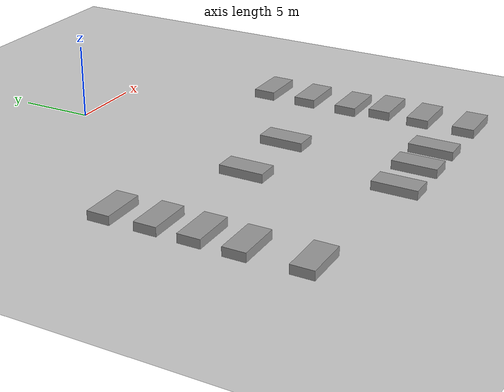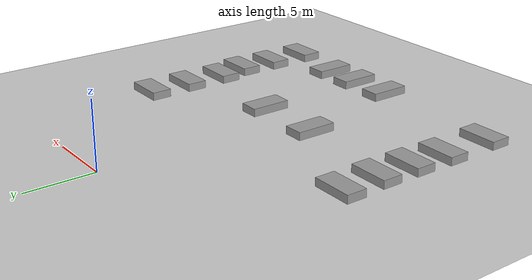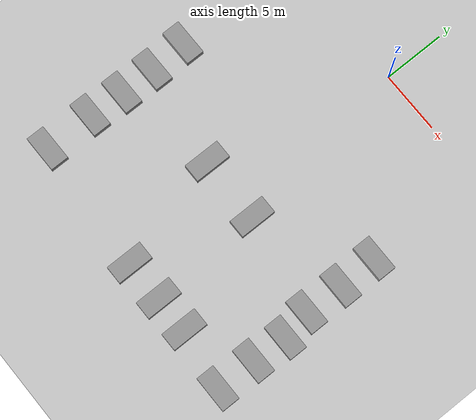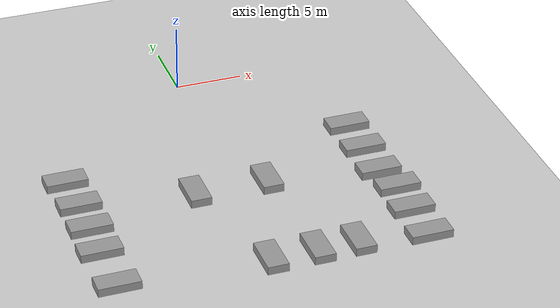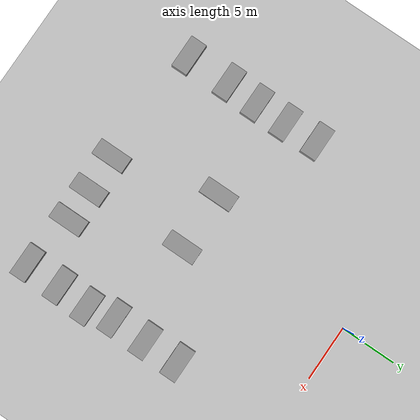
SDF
<sdf version="1.7">
 <world name="default">
  <model name="ground_plane">
   <static>1</static>
   <link name="link">
    <collision name="collision">
     <geometry><plane><normal>0 0 1</normal><size>100 100</size></plane></geometry>
     <surface><friction><ode><mu>100</mu><mu2>50</mu2></ode></friction></surface>
    </collision>
    <visual name="visual">
     <cast_shadows>0</cast_shadows>
     <geometry><plane><normal>0 0 1</normal><size>100 100</size></plane></geometry>
     <material>
      <script><uri>file://media/materials/scripts/gazebo.material</uri><name>Gazebo/Grey</name></script>
     </material>
    </visual>
   </link>
  </model>
  <model name="bed_2">
   <link name="link_2">
    <inertial>
     <mass>1</mass>
     <inertia>
      <ixx>0.166667</ixx>
      <ixy>0</ixy>
      <ixz>0</ixz>
      <iyy>0.166667</iyy>
      <iyz>0</iyz>
      <izz>0.166667</izz>
     </inertia>
    </inertial>
    <pose>-1.5718 2.2064 -0 0 -0 0</pose>
    <visual name="visual">
     <geometry><box><size>3 1.5 0.6</size></box></geometry>
     <material>
      <lighting>1</lighting>
      <script><uri>file://media/materials/scripts/gazebo.material</uri><name>Gazebo/Grey</name></script>
      <shader type="pixel"><normal_map>__default__</normal_map></shader>
      <ambient>0.3 0.3 0.3 1</ambient>
      <diffuse>0.7 0.7 0.7 1</diffuse>
      <specular>0.01 0.01 0.01 1</specular>
      <emissive>0 0 0 1</emissive>
     </material>
    </visual>
    <collision name="collision">
     <geometry><box><size>1 1 1</size></box></geometry>
     <surface>
      <friction>
       <ode><mu>1</mu><mu2>1</mu2><fdir1>0 0 0</fdir1><slip1>0</slip1><slip2>0</slip2></ode>
       <torsional>
        <coefficient>1</coefficient>
        <patch_radius>0</patch_radius>
        <surface_radius>0</surface_radius>
        <use_patch_radius>1</use_patch_radius>
        <ode><slip>0</slip></ode>
       </torsional>
      </friction>
      <bounce><restitution_coefficient>0</restitution_coefficient><threshold>1e+06</threshold></bounce>
      <contact>
       <collide_without_contact>0</collide_without_contact>
       <collide_without_contact_bitmask>1</collide_without_contact_bitmask>
       <collide_bitmask>1</collide_bitmask>
       <ode>
        <soft_cfm>0</soft_cfm>
        <soft_erp>0.2</soft_erp>
        <kp>1e+13</kp>
        <kd>1</kd>
        <max_vel>0.01</max_vel>
        <min_depth>0</min_depth>
       </ode>
       <bullet>
        <split_impulse>1</split_impulse>
        <split_impulse_penetration_threshold>-0.01</split_impulse_penetration_threshold>
        <soft_cfm>0</soft_cfm>
        <soft_erp>0.2</soft_erp>
        <kp>1e+13</kp>
        <kd>1</kd>
       </bullet>
      </contact>
     </surface>
    </collision>
   </link>
   <static>0</static>
   <pose>11.7053 -26.6291 0.499974 1e-05 -0 0</pose>
  </model>
  <model name="bed_2_clone">
   <link name="link_2">
    <inertial>
     <mass>1</mass>
     <inertia>
      <ixx>0.166667</ixx>
      <ixy>0</ixy>
      <ixz>0</ixz>
      <iyy>0.166667</iyy>
      <iyz>0</iyz>
      <izz>0.166667</izz>
     </inertia>
    </inertial>
    <pose>-1.5718 2.2064 -0 0 -0 0</pose>
    <visual name="visual">
     <geometry><box><size>3 1.5 0.6</size></box></geometry>
     <material>
      <lighting>1</lighting>
      <script><uri>file://media/materials/scripts/gazebo.material</uri><name>Gazebo/Grey</name></script>
      <shader type="pixel"><normal_map>__default__</normal_map></shader>
      <ambient>0.3 0.3 0.3 1</ambient>
      <diffuse>0.7 0.7 0.7 1</diffuse>
      <specular>0.01 0.01 0.01 1</specular>
      <emissive>0 0 0 1</emissive>
     </material>
    </visual>
    <collision name="collision">
     <geometry><box><size>1 1 1</size></box></geometry>
     <surface>
      <friction>
       <ode><mu>1</mu><mu2>1</mu2><fdir1>0 0 0</fdir1><slip1>0</slip1><slip2>0</slip2></ode>
       <torsional>
        <coefficient>1</coefficient>
        <patch_radius>0</patch_radius>
        <surface_radius>0</surface_radius>
        <use_patch_radius>1</use_patch_radius>
        <ode><slip>0</slip></ode>
       </torsional>
      </friction>
      <bounce><restitution_coefficient>0</restitution_coefficient><threshold>1e+06</threshold></bounce>
      <contact>
       <collide_without_contact>0</collide_without_contact>
       <collide_without_contact_bitmask>1</collide_without_contact_bitmask>
       <collide_bitmask>1</collide_bitmask>
       <ode>
        <soft_cfm>0</soft_cfm>
        <soft_erp>0.2</soft_erp>
        <kp>1e+13</kp>
        <kd>1</kd>
        <max_vel>0.01</max_vel>
        <min_depth>0</min_depth>
       </ode>
       <bullet>
        <split_impulse>1</split_impulse>
        <split_impulse_penetration_threshold>-0.01</split_impulse_penetration_threshold>
        <soft_cfm>0</soft_cfm>
        <soft_erp>0.2</soft_erp>
        <kp>1e+13</kp>
        <kd>1</kd>
       </bullet>
      </contact>
     </surface>
    </collision>
   </link>
   <static>0</static>
   <pose>11.8847 -20.5755 0.49998 0 1e-05 0</pose>
  </model>
  <model name="bed_2_clone_0">
   <link name="link_2">
    <inertial>
     <mass>1</mass>
     <inertia>
      <ixx>0.166667</ixx>
      <ixy>0</ixy>
      <ixz>0</ixz>
      <iyy>0.166667</iyy>
      <iyz>0</iyz>
      <izz>0.166667</izz>
     </inertia>
    </inertial>
    <pose>-1.5718 2.2064 -0 0 -0 0</pose>
    <visual name="visual">
     <geometry><box><size>3 1.5 0.6</size></box></geometry>
     <material>
      <lighting>1</lighting>
      <script><uri>file://media/materials/scripts/gazebo.material</uri><name>Gazebo/Grey</name></script>
      <shader type="pixel"><normal_map>__default__</normal_map></shader>
      <ambient>0.3 0.3 0.3 1</ambient>
      <diffuse>0.7 0.7 0.7 1</diffuse>
      <specular>0.01 0.01 0.01 1</specular>
      <emissive>0 0 0 1</emissive>
     </material>
    </visual>
    <collision name="collision">
     <geometry><box><size>1 1 1</size></box></geometry>
     <surface>
      <friction>
       <ode><mu>1</mu><mu2>1</mu2><fdir1>0 0 0</fdir1><slip1>0</slip1><slip2>0</slip2></ode>
       <torsional>
        <coefficient>1</coefficient>
        <patch_radius>0</patch_radius>
        <surface_radius>0</surface_radius>
        <use_patch_radius>1</use_patch_radius>
        <ode><slip>0</slip></ode>
       </torsional>
      </friction>
      <bounce><restitution_coefficient>0</restitution_coefficient><threshold>1e+06</threshold></bounce>
      <contact>
       <collide_without_contact>0</collide_without_contact>
       <collide_without_contact_bitmask>1</collide_without_contact_bitmask>
       <collide_bitmask>1</collide_bitmask>
       <ode>
        <soft_cfm>0</soft_cfm>
        <soft_erp>0.2</soft_erp>
        <kp>1e+13</kp>
        <kd>1</kd>
        <max_vel>0.01</max_vel>
        <min_depth>0</min_depth>
       </ode>
       <bullet>
        <split_impulse>1</split_impulse>
        <split_impulse_penetration_threshold>-0.01</split_impulse_penetration_threshold>
        <soft_cfm>0</soft_cfm>
        <soft_erp>0.2</soft_erp>
        <kp>1e+13</kp>
        <kd>1</kd>
       </bullet>
      </contact>
     </surface>
    </collision>
   </link>
   <static>0</static>
   <pose>11.7516 -23.4065 0.499974 1e-05 -0 0</pose>
  </model>
  <model name="bed_2_clone_1">
   <link name="link_2">
    <inertial>
     <mass>1</mass>
     <inertia>
      <ixx>0.166667</ixx>
      <ixy>0</ixy>
      <ixz>0</ixz>
      <iyy>0.166667</iyy>
      <iyz>0</iyz>
      <izz>0.166667</izz>
     </inertia>
    </inertial>
    <pose>-1.5718 2.2064 -0 0 -0 0</pose>
    <visual name="visual">
     <geometry><box><size>3 1.5 0.6</size></box></geometry>
     <material>
      <lighting>1</lighting>
      <script><uri>file://media/materials/scripts/gazebo.material</uri><name>Gazebo/Grey</name></script>
      <shader type="pixel"><normal_map>__default__</normal_map></shader>
      <ambient>0.3 0.3 0.3 1</ambient>
      <diffuse>0.7 0.7 0.7 1</diffuse>
      <specular>0.01 0.01 0.01 1</specular>
      <emissive>0 0 0 1</emissive>
     </material>
    </visual>
    <collision name="collision">
     <geometry><box><size>1 1 1</size></box></geometry>
     <surface>
      <friction>
       <ode><mu>1</mu><mu2>1</mu2><fdir1>0 0 0</fdir1><slip1>0</slip1><slip2>0</slip2></ode>
       <torsional>
        <coefficient>1</coefficient>
        <patch_radius>0</patch_radius>
        <surface_radius>0</surface_radius>
        <use_patch_radius>1</use_patch_radius>
        <ode><slip>0</slip></ode>
       </torsional>
      </friction>
      <bounce><restitution_coefficient>0</restitution_coefficient><threshold>1e+06</threshold></bounce>
      <contact>
       <collide_without_contact>0</collide_without_contact>
       <collide_without_contact_bitmask>1</collide_without_contact_bitmask>
       <collide_bitmask>1</collide_bitmask>
       <ode>
        <soft_cfm>0</soft_cfm>
        <soft_erp>0.2</soft_erp>
        <kp>1e+13</kp>
        <kd>1</kd>
        <max_vel>0.01</max_vel>
        <min_depth>0</min_depth>
       </ode>
       <bullet>
        <split_impulse>1</split_impulse>
        <split_impulse_penetration_threshold>-0.01</split_impulse_penetration_threshold>
        <soft_cfm>0</soft_cfm>
        <soft_erp>0.2</soft_erp>
        <kp>1e+13</kp>
        <kd>1</kd>
       </bullet>
      </contact>
     </surface>
    </collision>
   </link>
   <static>0</static>
   <pose>3.12006 -25.232 0.499974 1e-05 -0 -1.57112</pose>
  </model>
  <model name="bed_2_clone_1_clone">
   <link name="link_2">
    <inertial>
     <mass>1</mass>
     <inertia>
      <ixx>0.166667</ixx>
      <ixy>0</ixy>
      <ixz>0</ixz>
      <iyy>0.166667</iyy>
      <iyz>0</iyz>
      <izz>0.166667</izz>
     </inertia>
    </inertial>
    <pose>-1.5718 2.2064 -0 0 -0 0</pose>
    <visual name="visual">
     <geometry><box><size>3 1.5 0.6</size></box></geometry>
     <material>
      <lighting>1</lighting>
      <script><uri>file://media/materials/scripts/gazebo.material</uri><name>Gazebo/Grey</name></script>
      <shader type="pixel"><normal_map>__default__</normal_map></shader>
      <ambient>0.3 0.3 0.3 1</ambient>
      <diffuse>0.7 0.7 0.7 1</diffuse>
      <specular>0.01 0.01 0.01 1</specular>
      <emissive>0 0 0 1</emissive>
     </material>
    </visual>
    <collision name="collision">
     <geometry><box><size>1 1 1</size></box></geometry>
     <surface>
      <friction>
       <ode><mu>1</mu><mu2>1</mu2><fdir1>0 0 0</fdir1><slip1>0</slip1><slip2>0</slip2></ode>
       <torsional>
        <coefficient>1</coefficient>
        <patch_radius>0</patch_radius>
        <surface_radius>0</surface_radius>
        <use_patch_radius>1</use_patch_radius>
        <ode><slip>0</slip></ode>
       </torsional>
      </friction>
      <bounce><restitution_coefficient>0</restitution_coefficient><threshold>1e+06</threshold></bounce>
      <contact>
       <collide_without_contact>0</collide_without_contact>
       <collide_without_contact_bitmask>1</collide_without_contact_bitmask>
       <collide_bitmask>1</collide_bitmask>
       <ode>
        <soft_cfm>0</soft_cfm>
        <soft_erp>0.2</soft_erp>
        <kp>1e+13</kp>
        <kd>1</kd>
        <max_vel>0.01</max_vel>
        <min_depth>0</min_depth>
       </ode>
       <bullet>
        <split_impulse>1</split_impulse>
        <split_impulse_penetration_threshold>-0.01</split_impulse_penetration_threshold>
        <soft_cfm>0</soft_cfm>
        <soft_erp>0.2</soft_erp>
        <kp>1e+13</kp>
        <kd>1</kd>
       </bullet>
      </contact>
     </surface>
    </collision>
   </link>
   <static>0</static>
   <pose>0.175192 -25.2559 0.499974 1e-05 -0 -1.57112</pose>
  </model>
  <model name="bed_2_clone_1_clone_0">
   <link name="link_2">
    <inertial>
     <mass>1</mass>
     <inertia>
      <ixx>0.166667</ixx>
      <ixy>0</ixy>
      <ixz>0</ixz>
      <iyy>0.166667</iyy>
      <iyz>0</iyz>
      <izz>0.166667</izz>
     </inertia>
    </inertial>
    <pose>-1.5718 2.2064 -0 0 -0 0</pose>
    <visual name="visual">
     <geometry><box><size>3 1.5 0.6</size></box></geometry>
     <material>
      <lighting>1</lighting>
      <script><uri>file://media/materials/scripts/gazebo.material</uri><name>Gazebo/Grey</name></script>
      <shader type="pixel"><normal_map>__default__</normal_map></shader>
      <ambient>0.3 0.3 0.3 1</ambient>
      <diffuse>0.7 0.7 0.7 1</diffuse>
      <specular>0.01 0.01 0.01 1</specular>
      <emissive>0 0 0 1</emissive>
     </material>
    </visual>
    <collision name="collision">
     <geometry><box><size>1 1 1</size></box></geometry>
     <surface>
      <friction>
       <ode><mu>1</mu><mu2>1</mu2><fdir1>0 0 0</fdir1><slip1>0</slip1><slip2>0</slip2></ode>
       <torsional>
        <coefficient>1</coefficient>
        <patch_radius>0</patch_radius>
        <surface_radius>0</surface_radius>
        <use_patch_radius>1</use_patch_radius>
        <ode><slip>0</slip></ode>
       </torsional>
      </friction>
      <bounce><restitution_coefficient>0</restitution_coefficient><threshold>1e+06</threshold></bounce>
      <contact>
       <collide_without_contact>0</collide_without_contact>
       <collide_without_contact_bitmask>1</collide_without_contact_bitmask>
       <collide_bitmask>1</collide_bitmask>
       <ode>
        <soft_cfm>0</soft_cfm>
        <soft_erp>0.2</soft_erp>
        <kp>1e+13</kp>
        <kd>1</kd>
        <max_vel>0.01</max_vel>
        <min_depth>0</min_depth>
       </ode>
       <bullet>
        <split_impulse>1</split_impulse>
        <split_impulse_penetration_threshold>-0.01</split_impulse_penetration_threshold>
        <soft_cfm>0</soft_cfm>
        <soft_erp>0.2</soft_erp>
        <kp>1e+13</kp>
        <kd>1</kd>
       </bullet>
      </contact>
     </surface>
    </collision>
   </link>
   <static>0</static>
   <pose>-3.17206 -25.3005 0.499974 1e-05 -0 -1.57112</pose>
  </model>
  <model name="bed_clone_2_clone_1">
   <link name="link_2">
    <inertial>
     <mass>1</mass>
     <inertia>
      <ixx>0.166667</ixx>
      <ixy>0</ixy>
      <ixz>0</ixz>
      <iyy>0.166667</iyy>
      <iyz>0</iyz>
      <izz>0.166667</izz>
     </inertia>
    </inertial>
    <pose>-1.5718 2.2064 0 0 -0 0</pose>
    <visual name="visual">
     <geometry><box><size>3 1.5 0.6</size></box></geometry>
     <material>
      <lighting>1</lighting>
      <script><uri>file://media/materials/scripts/gazebo.material</uri><name>Gazebo/Grey</name></script>
      <shader type="pixel"><normal_map>__default__</normal_map></shader>
      <ambient>0.3 0.3 0.3 1</ambient>
      <diffuse>0.7 0.7 0.7 1</diffuse>
      <specular>0.01 0.01 0.01 1</specular>
      <emissive>0 0 0 1</emissive>
     </material>
    </visual>
    <collision name="collision">
     <geometry><box><size>1 1 1</size></box></geometry>
     <surface>
      <friction>
       <ode><mu>1</mu><mu2>1</mu2><fdir1>0 0 0</fdir1><slip1>0</slip1><slip2>0</slip2></ode>
       <torsional>
        <coefficient>1</coefficient>
        <patch_radius>0</patch_radius>
        <surface_radius>0</surface_radius>
        <use_patch_radius>1</use_patch_radius>
        <ode><slip>0</slip></ode>
       </torsional>
      </friction>
      <bounce><restitution_coefficient>0</restitution_coefficient><threshold>1e+06</threshold></bounce>
      <contact>
       <collide_without_contact>0</collide_without_contact>
       <collide_without_contact_bitmask>1</collide_without_contact_bitmask>
       <collide_bitmask>1</collide_bitmask>
       <ode>
        <soft_cfm>0</soft_cfm>
        <soft_erp>0.2</soft_erp>
        <kp>1e+13</kp>
        <kd>1</kd>
        <max_vel>0.01</max_vel>
        <min_depth>0</min_depth>
       </ode>
       <bullet>
        <split_impulse>1</split_impulse>
        <split_impulse_penetration_threshold>-0.01</split_impulse_penetration_threshold>
        <soft_cfm>0</soft_cfm>
        <soft_erp>0.2</soft_erp>
        <kp>1e+13</kp>
        <kd>1</kd>
       </bullet>
      </contact>
     </surface>
    </collision>
   </link>
   <static>0</static>
   <pose>11.4594 -11.9252 0.49998 0 1e-05 0</pose>
  </model>
  <model name="bed_clone_2_clone_2">
   <link name="link_2">
    <inertial>
     <mass>1</mass>
     <inertia>
      <ixx>0.166667</ixx>
      <ixy>0</ixy>
      <ixz>0</ixz>
      <iyy>0.166667</iyy>
      <iyz>0</iyz>
      <izz>0.166667</izz>
     </inertia>
    </inertial>
    <pose>-1.5718 2.2064 0 0 -0 0</pose>
    <visual name="visual">
     <geometry><box><size>3 1.5 0.6</size></box></geometry>
     <material>
      <lighting>1</lighting>
      <script><uri>file://media/materials/scripts/gazebo.material</uri><name>Gazebo/Grey</name></script>
      <shader type="pixel"><normal_map>__default__</normal_map></shader>
      <ambient>0.3 0.3 0.3 1</ambient>
      <diffuse>0.7 0.7 0.7 1</diffuse>
      <specular>0.01 0.01 0.01 1</specular>
      <emissive>0 0 0 1</emissive>
     </material>
    </visual>
    <collision name="collision">
     <geometry><box><size>1 1 1</size></box></geometry>
     <surface>
      <friction>
       <ode><mu>1</mu><mu2>1</mu2><fdir1>0 0 0</fdir1><slip1>0</slip1><slip2>0</slip2></ode>
       <torsional>
        <coefficient>1</coefficient>
        <patch_radius>0</patch_radius>
        <surface_radius>0</surface_radius>
        <use_patch_radius>1</use_patch_radius>
        <ode><slip>0</slip></ode>
       </torsional>
      </friction>
      <bounce><restitution_coefficient>0</restitution_coefficient><threshold>1e+06</threshold></bounce>
      <contact>
       <collide_without_contact>0</collide_without_contact>
       <collide_without_contact_bitmask>1</collide_without_contact_bitmask>
       <collide_bitmask>1</collide_bitmask>
       <ode>
        <soft_cfm>0</soft_cfm>
        <soft_erp>0.2</soft_erp>
        <kp>1e+13</kp>
        <kd>1</kd>
        <max_vel>0.01</max_vel>
        <min_depth>0</min_depth>
       </ode>
       <bullet>
        <split_impulse>1</split_impulse>
        <split_impulse_penetration_threshold>-0.01</split_impulse_penetration_threshold>
        <soft_cfm>0</soft_cfm>
        <soft_erp>0.2</soft_erp>
        <kp>1e+13</kp>
        <kd>1</kd>
       </bullet>
      </contact>
     </surface>
    </collision>
   </link>
   <static>0</static>
   <pose>11.4767 -15.0798 0.499974 1e-05 -0 0</pose>
  </model>
  <model name="bed_clone_2_clone_3">
   <link name="link_2">
    <inertial>
     <mass>1</mass>
     <inertia>
      <ixx>0.166667</ixx>
      <ixy>0</ixy>
      <ixz>0</ixz>
      <iyy>0.166667</iyy>
      <iyz>0</iyz>
      <izz>0.166667</izz>
     </inertia>
    </inertial>
    <pose>-1.5718 2.2064 0 0 -0 0</pose>
    <visual name="visual">
     <geometry><box><size>3 1.5 0.6</size></box></geometry>
     <material>
      <lighting>1</lighting>
      <script><uri>file://media/materials/scripts/gazebo.material</uri><name>Gazebo/Grey</name></script>
      <shader type="pixel"><normal_map>__default__</normal_map></shader>
      <ambient>0.3 0.3 0.3 1</ambient>
      <diffuse>0.7 0.7 0.7 1</diffuse>
      <specular>0.01 0.01 0.01 1</specular>
      <emissive>0 0 0 1</emissive>
     </material>
    </visual>
    <collision name="collision">
     <geometry><box><size>1 1 1</size></box></geometry>
     <surface>
      <friction>
       <ode><mu>1</mu><mu2>1</mu2><fdir1>0 0 0</fdir1><slip1>0</slip1><slip2>0</slip2></ode>
       <torsional>
        <coefficient>1</coefficient>
        <patch_radius>0</patch_radius>
        <surface_radius>0</surface_radius>
        <use_patch_radius>1</use_patch_radius>
        <ode><slip>0</slip></ode>
       </torsional>
      </friction>
      <bounce><restitution_coefficient>0</restitution_coefficient><threshold>1e+06</threshold></bounce>
      <contact>
       <collide_without_contact>0</collide_without_contact>
       <collide_without_contact_bitmask>1</collide_without_contact_bitmask>
       <collide_bitmask>1</collide_bitmask>
       <ode>
        <soft_cfm>0</soft_cfm>
        <soft_erp>0.2</soft_erp>
        <kp>1e+13</kp>
        <kd>1</kd>
        <max_vel>0.01</max_vel>
        <min_depth>0</min_depth>
       </ode>
       <bullet>
        <split_impulse>1</split_impulse>
        <split_impulse_penetration_threshold>-0.01</split_impulse_penetration_threshold>
        <soft_cfm>0</soft_cfm>
        <soft_erp>0.2</soft_erp>
        <kp>1e+13</kp>
        <kd>1</kd>
       </bullet>
      </contact>
     </surface>
    </collision>
   </link>
   <static>0</static>
   <pose>11.4189 -18.2146 0.499974 1e-05 -0 0</pose>
  </model>
  <model name="bed_1_clone_0_clone_clone_2">
   <link name="link_2">
    <inertial>
     <mass>1</mass>
     <inertia>
      <ixx>0.166667</ixx>
      <ixy>0</ixy>
      <ixz>0</ixz>
      <iyy>0.166667</iyy>
      <iyz>0</iyz>
      <izz>0.166667</izz>
     </inertia>
    </inertial>
    <pose>-1.5718 2.2064 -0 0 -0 0</pose>
    <visual name="visual">
     <geometry><box><size>3 1.5 0.6</size></box></geometry>
     <material>
      <lighting>1</lighting>
      <script><uri>file://media/materials/scripts/gazebo.material</uri><name>Gazebo/Grey</name></script>
      <shader type="pixel"><normal_map>__default__</normal_map></shader>
      <ambient>0.3 0.3 0.3 1</ambient>
      <diffuse>0.7 0.7 0.7 1</diffuse>
      <specular>0.01 0.01 0.01 1</specular>
      <emissive>0 0 0 1</emissive>
     </material>
    </visual>
    <collision name="collision">
     <geometry><box><size>1 1 1</size></box></geometry>
     <surface>
      <friction>
       <ode><mu>1</mu><mu2>1</mu2><fdir1>0 0 0</fdir1><slip1>0</slip1><slip2>0</slip2></ode>
       <torsional>
        <coefficient>1</coefficient>
        <patch_radius>0</patch_radius>
        <surface_radius>0</surface_radius>
        <use_patch_radius>1</use_patch_radius>
        <ode><slip>0</slip></ode>
       </torsional>
      </friction>
      <bounce><restitution_coefficient>0</restitution_coefficient><threshold>1e+06</threshold></bounce>
      <contact>
       <collide_without_contact>0</collide_without_contact>
       <collide_without_contact_bitmask>1</collide_without_contact_bitmask>
       <collide_bitmask>1</collide_bitmask>
       <ode>
        <soft_cfm>0</soft_cfm>
        <soft_erp>0.2</soft_erp>
        <kp>1e+13</kp>
        <kd>1</kd>
        <max_vel>0.01</max_vel>
        <min_depth>0</min_depth>
       </ode>
       <bullet>
        <split_impulse>1</split_impulse>
        <split_impulse_penetration_threshold>-0.01</split_impulse_penetration_threshold>
        <soft_cfm>0</soft_cfm>
        <soft_erp>0.2</soft_erp>
        <kp>1e+13</kp>
        <kd>1</kd>
       </bullet>
      </contact>
     </surface>
    </collision>
   </link>
   <static>0</static>
   <pose>-9.97392 -12.6188 0.499974 1e-05 -0 0.002214</pose>
  </model>
  <model name="bed_1_clone_0_clone_clone_3">
   <link name="link_2">
    <inertial>
     <mass>1</mass>
     <inertia>
      <ixx>0.166667</ixx>
      <ixy>0</ixy>
      <ixz>0</ixz>
      <iyy>0.166667</iyy>
      <iyz>0</iyz>
      <izz>0.166667</izz>
     </inertia>
    </inertial>
    <pose>-1.5718 2.2064 -0 0 -0 0</pose>
    <visual name="visual">
     <geometry><box><size>3 1.5 0.6</size></box></geometry>
     <material>
      <lighting>1</lighting>
      <script><uri>file://media/materials/scripts/gazebo.material</uri><name>Gazebo/Grey</name></script>
      <shader type="pixel"><normal_map>__default__</normal_map></shader>
      <ambient>0.3 0.3 0.3 1</ambient>
      <diffuse>0.7 0.7 0.7 1</diffuse>
      <specular>0.01 0.01 0.01 1</specular>
      <emissive>0 0 0 1</emissive>
     </material>
    </visual>
    <collision name="collision">
     <geometry><box><size>1 1 1</size></box></geometry>
     <surface>
      <friction>
       <ode><mu>1</mu><mu2>1</mu2><fdir1>0 0 0</fdir1><slip1>0</slip1><slip2>0</slip2></ode>
       <torsional>
        <coefficient>1</coefficient>
        <patch_radius>0</patch_radius>
        <surface_radius>0</surface_radius>
        <use_patch_radius>1</use_patch_radius>
        <ode><slip>0</slip></ode>
       </torsional>
      </friction>
      <bounce><restitution_coefficient>0</restitution_coefficient><threshold>1e+06</threshold></bounce>
      <contact>
       <collide_without_contact>0</collide_without_contact>
       <collide_without_contact_bitmask>1</collide_without_contact_bitmask>
       <collide_bitmask>1</collide_bitmask>
       <ode>
        <soft_cfm>0</soft_cfm>
        <soft_erp>0.2</soft_erp>
        <kp>1e+13</kp>
        <kd>1</kd>
        <max_vel>0.01</max_vel>
        <min_depth>0</min_depth>
       </ode>
       <bullet>
        <split_impulse>1</split_impulse>
        <split_impulse_penetration_threshold>-0.01</split_impulse_penetration_threshold>
        <soft_cfm>0</soft_cfm>
        <soft_erp>0.2</soft_erp>
        <kp>1e+13</kp>
        <kd>1</kd>
       </bullet>
      </contact>
     </surface>
    </collision>
   </link>
   <static>0</static>
   <pose>-9.82561 -15.6623 0.49998 0 1e-05 0.002214</pose>
  </model>
  <model name="bed_1_clone_0_clone_clone_4">
   <link name="link_2">
    <inertial>
     <mass>1</mass>
     <inertia>
      <ixx>0.166667</ixx>
      <ixy>0</ixy>
      <ixz>0</ixz>
      <iyy>0.166667</iyy>
      <iyz>0</iyz>
      <izz>0.166667</izz>
     </inertia>
    </inertial>
    <pose>-1.5718 2.2064 -0 0 -0 0</pose>
    <visual name="visual">
     <geometry><box><size>3 1.5 0.6</size></box></geometry>
     <material>
      <lighting>1</lighting>
      <script><uri>file://media/materials/scripts/gazebo.material</uri><name>Gazebo/Grey</name></script>
      <shader type="pixel"><normal_map>__default__</normal_map></shader>
      <ambient>0.3 0.3 0.3 1</ambient>
      <diffuse>0.7 0.7 0.7 1</diffuse>
      <specular>0.01 0.01 0.01 1</specular>
      <emissive>0 0 0 1</emissive>
     </material>
    </visual>
    <collision name="collision">
     <geometry><box><size>1 1 1</size></box></geometry>
     <surface>
      <friction>
       <ode><mu>1</mu><mu2>1</mu2><fdir1>0 0 0</fdir1><slip1>0</slip1><slip2>0</slip2></ode>
       <torsional>
        <coefficient>1</coefficient>
        <patch_radius>0</patch_radius>
        <surface_radius>0</surface_radius>
        <use_patch_radius>1</use_patch_radius>
        <ode><slip>0</slip></ode>
       </torsional>
      </friction>
      <bounce><restitution_coefficient>0</restitution_coefficient><threshold>1e+06</threshold></bounce>
      <contact>
       <collide_without_contact>0</collide_without_contact>
       <collide_without_contact_bitmask>1</collide_without_contact_bitmask>
       <collide_bitmask>1</collide_bitmask>
       <ode>
        <soft_cfm>0</soft_cfm>
        <soft_erp>0.2</soft_erp>
        <kp>1e+13</kp>
        <kd>1</kd>
        <max_vel>0.01</max_vel>
        <min_depth>0</min_depth>
       </ode>
       <bullet>
        <split_impulse>1</split_impulse>
        <split_impulse_penetration_threshold>-0.01</split_impulse_penetration_threshold>
        <soft_cfm>0</soft_cfm>
        <soft_erp>0.2</soft_erp>
        <kp>1e+13</kp>
        <kd>1</kd>
       </bullet>
      </contact>
     </surface>
    </collision>
   </link>
   <static>0</static>
   <pose>-9.83981 -18.5112 0.49998 0 1e-05 0.002214</pose>
  </model>
  <model name="bed_2_clone_1_clone_clone">
   <link name="link_2">
    <inertial>
     <mass>1</mass>
     <inertia>
      <ixx>0.166667</ixx>
      <ixy>0</ixy>
      <ixz>0</ixz>
      <iyy>0.166667</iyy>
      <iyz>0</iyz>
      <izz>0.166667</izz>
     </inertia>
    </inertial>
    <pose>-1.5718 2.2064 -0 0 -0 0</pose>
    <visual name="visual">
     <geometry><box><size>3 1.5 0.6</size></box></geometry>
     <material>
      <lighting>1</lighting>
      <script><uri>file://media/materials/scripts/gazebo.material</uri><name>Gazebo/Grey</name></script>
      <shader type="pixel"><normal_map>__default__</normal_map></shader>
      <ambient>0.3 0.3 0.3 1</ambient>
      <diffuse>0.7 0.7 0.7 1</diffuse>
      <specular>0.01 0.01 0.01 1</specular>
      <emissive>0 0 0 1</emissive>
     </material>
    </visual>
    <collision name="collision">
     <geometry><box><size>1 1 1</size></box></geometry>
     <surface>
      <friction>
       <ode><mu>1</mu><mu2>1</mu2><fdir1>0 0 0</fdir1><slip1>0</slip1><slip2>0</slip2></ode>
       <torsional>
        <coefficient>1</coefficient>
        <patch_radius>0</patch_radius>
        <surface_radius>0</surface_radius>
        <use_patch_radius>1</use_patch_radius>
        <ode><slip>0</slip></ode>
       </torsional>
      </friction>
      <bounce><restitution_coefficient>0</restitution_coefficient><threshold>1e+06</threshold></bounce>
      <contact>
       <collide_without_contact>0</collide_without_contact>
       <collide_without_contact_bitmask>1</collide_without_contact_bitmask>
       <collide_bitmask>1</collide_bitmask>
       <ode>
        <soft_cfm>0</soft_cfm>
        <soft_erp>0.2</soft_erp>
        <kp>1e+13</kp>
        <kd>1</kd>
        <max_vel>0.01</max_vel>
        <min_depth>0</min_depth>
       </ode>
       <bullet>
        <split_impulse>1</split_impulse>
        <split_impulse_penetration_threshold>-0.01</split_impulse_penetration_threshold>
        <soft_cfm>0</soft_cfm>
        <soft_erp>0.2</soft_erp>
        <kp>1e+13</kp>
        <kd>1</kd>
       </bullet>
      </contact>
     </surface>
    </collision>
   </link>
   <static>0</static>
   <pose>-0.240599 -16.2471 0.500017 -1e-05 0 -1.57112</pose>
  </model>
  <model name="bed_2_clone_1_clone_clone_0">
   <link name="link_2">
    <inertial>
     <mass>1</mass>
     <inertia>
      <ixx>0.166667</ixx>
      <ixy>0</ixy>
      <ixz>0</ixz>
      <iyy>0.166667</iyy>
      <iyz>0</iyz>
      <izz>0.166667</izz>
     </inertia>
    </inertial>
    <pose>-1.5718 2.2064 -0 0 -0 0</pose>
    <visual name="visual">
     <geometry><box><size>3 1.5 0.6</size></box></geometry>
     <material>
      <lighting>1</lighting>
      <script><uri>file://media/materials/scripts/gazebo.material</uri><name>Gazebo/Grey</name></script>
      <shader type="pixel"><normal_map>__default__</normal_map></shader>
      <ambient>0.3 0.3 0.3 1</ambient>
      <diffuse>0.7 0.7 0.7 1</diffuse>
      <specular>0.01 0.01 0.01 1</specular>
      <emissive>0 0 0 1</emissive>
     </material>
    </visual>
    <collision name="collision">
     <geometry><box><size>1 1 1</size></box></geometry>
     <surface>
      <friction>
       <ode><mu>1</mu><mu2>1</mu2><fdir1>0 0 0</fdir1><slip1>0</slip1><slip2>0</slip2></ode>
       <torsional>
        <coefficient>1</coefficient>
        <patch_radius>0</patch_radius>
        <surface_radius>0</surface_radius>
        <use_patch_radius>1</use_patch_radius>
        <ode><slip>0</slip></ode>
       </torsional>
      </friction>
      <bounce><restitution_coefficient>0</restitution_coefficient><threshold>1e+06</threshold></bounce>
      <contact>
       <collide_without_contact>0</collide_without_contact>
       <collide_without_contact_bitmask>1</collide_without_contact_bitmask>
       <collide_bitmask>1</collide_bitmask>
       <ode>
        <soft_cfm>0</soft_cfm>
        <soft_erp>0.2</soft_erp>
        <kp>1e+13</kp>
        <kd>1</kd>
        <max_vel>0.01</max_vel>
        <min_depth>0</min_depth>
       </ode>
       <bullet>
        <split_impulse>1</split_impulse>
        <split_impulse_penetration_threshold>-0.01</split_impulse_penetration_threshold>
        <soft_cfm>0</soft_cfm>
        <soft_erp>0.2</soft_erp>
        <kp>1e+13</kp>
        <kd>1</kd>
       </bullet>
      </contact>
     </surface>
    </collision>
   </link>
   <static>0</static>
   <pose>-5.53991 -16.2175 0.50001 -0 -1e-05 -1.57112</pose>
  </model>
  <model name="bed_1_clone_0_clone_clone_4_clone">
   <link name="link_2">
    <inertial>
     <mass>1</mass>
     <inertia>
      <ixx>0.166667</ixx>
      <ixy>0</ixy>
      <ixz>0</ixz>
      <iyy>0.166667</iyy>
      <iyz>0</iyz>
      <izz>0.166667</izz>
     </inertia>
    </inertial>
    <pose>-1.5718 2.2064 -0 0 -0 0</pose>
    <visual name="visual">
     <geometry><box><size>3 1.5 0.6</size></box></geometry>
     <material>
      <lighting>1</lighting>
      <script><uri>file://media/materials/scripts/gazebo.material</uri><name>Gazebo/Grey</name></script>
      <shader type="pixel"><normal_map>__default__</normal_map></shader>
      <ambient>0.3 0.3 0.3 1</ambient>
      <diffuse>0.7 0.7 0.7 1</diffuse>
      <specular>0.01 0.01 0.01 1</specular>
      <emissive>0 0 0 1</emissive>
     </material>
    </visual>
    <collision name="collision">
     <geometry><box><size>1 1 1</size></box></geometry>
     <surface>
      <friction>
       <ode><mu>1</mu><mu2>1</mu2><fdir1>0 0 0</fdir1><slip1>0</slip1><slip2>0</slip2></ode>
       <torsional>
        <coefficient>1</coefficient>
        <patch_radius>0</patch_radius>
        <surface_radius>0</surface_radius>
        <use_patch_radius>1</use_patch_radius>
        <ode><slip>0</slip></ode>
       </torsional>
      </friction>
      <bounce><restitution_coefficient>0</restitution_coefficient><threshold>1e+06</threshold></bounce>
      <contact>
       <collide_without_contact>0</collide_without_contact>
       <collide_without_contact_bitmask>1</collide_without_contact_bitmask>
       <collide_bitmask>1</collide_bitmask>
       <ode>
        <soft_cfm>0</soft_cfm>
        <soft_erp>0.2</soft_erp>
        <kp>1e+13</kp>
        <kd>1</kd>
        <max_vel>0.01</max_vel>
        <min_depth>0</min_depth>
       </ode>
       <bullet>
        <split_impulse>1</split_impulse>
        <split_impulse_penetration_threshold>-0.01</split_impulse_penetration_threshold>
        <soft_cfm>0</soft_cfm>
        <soft_erp>0.2</soft_erp>
        <kp>1e+13</kp>
        <kd>1</kd>
       </bullet>
      </contact>
     </surface>
    </collision>
   </link>
   <static>0</static>
   <pose>-9.88763 -25.3985 0.50001 0 -1e-05 0.002214</pose>
  </model>
  <model name="bed_1_clone_0_clone_clone_4_clone_0">
   <link name="link_2">
    <inertial>
     <mass>1</mass>
     <inertia>
      <ixx>0.166667</ixx>
      <ixy>0</ixy>
      <ixz>0</ixz>
      <iyy>0.166667</iyy>
      <iyz>0</iyz>
      <izz>0.166667</izz>
     </inertia>
    </inertial>
    <pose>-1.5718 2.2064 -0 0 -0 0</pose>
    <visual name="visual">
     <geometry><box><size>3 1.5 0.6</size></box></geometry>
     <material>
      <lighting>1</lighting>
      <script><uri>file://media/materials/scripts/gazebo.material</uri><name>Gazebo/Grey</name></script>
      <shader type="pixel"><normal_map>__default__</normal_map></shader>
      <ambient>0.3 0.3 0.3 1</ambient>
      <diffuse>0.7 0.7 0.7 1</diffuse>
      <specular>0.01 0.01 0.01 1</specular>
      <emissive>0 0 0 1</emissive>
     </material>
    </visual>
    <collision name="collision">
     <geometry><box><size>1 1 1</size></box></geometry>
     <surface>
      <friction>
       <ode><mu>1</mu><mu2>1</mu2><fdir1>0 0 0</fdir1><slip1>0</slip1><slip2>0</slip2></ode>
       <torsional>
        <coefficient>1</coefficient>
        <patch_radius>0</patch_radius>
        <surface_radius>0</surface_radius>
        <use_patch_radius>1</use_patch_radius>
        <ode><slip>0</slip></ode>
       </torsional>
      </friction>
      <bounce><restitution_coefficient>0</restitution_coefficient><threshold>1e+06</threshold></bounce>
      <contact>
       <collide_without_contact>0</collide_without_contact>
       <collide_without_contact_bitmask>1</collide_without_contact_bitmask>
       <collide_bitmask>1</collide_bitmask>
       <ode>
        <soft_cfm>0</soft_cfm>
        <soft_erp>0.2</soft_erp>
        <kp>1e+13</kp>
        <kd>1</kd>
        <max_vel>0.01</max_vel>
        <min_depth>0</min_depth>
       </ode>
       <bullet>
        <split_impulse>1</split_impulse>
        <split_impulse_penetration_threshold>-0.01</split_impulse_penetration_threshold>
        <soft_cfm>0</soft_cfm>
        <soft_erp>0.2</soft_erp>
        <kp>1e+13</kp>
        <kd>1</kd>
       </bullet>
      </contact>
     </surface>
    </collision>
   </link>
   <static>0</static>
   <pose>-9.94562 -21.3916 0.499974 1e-05 -0 0.002214</pose>
  </model>
 </world>
</sdf>
